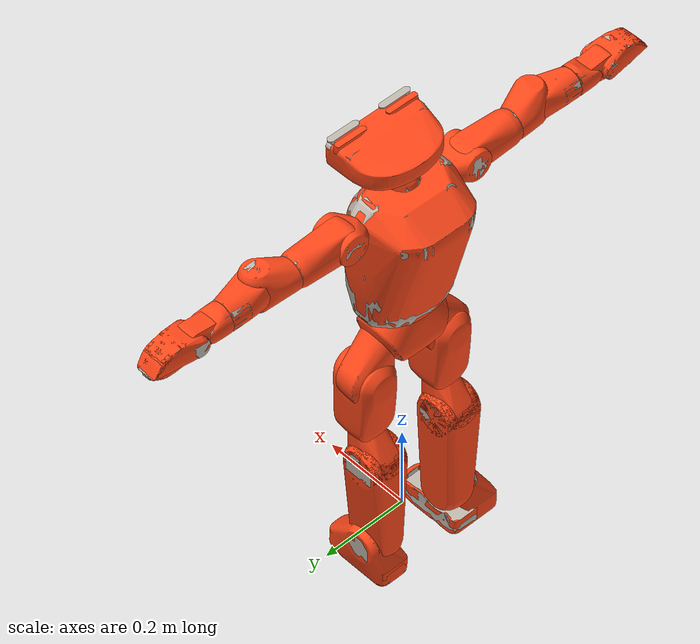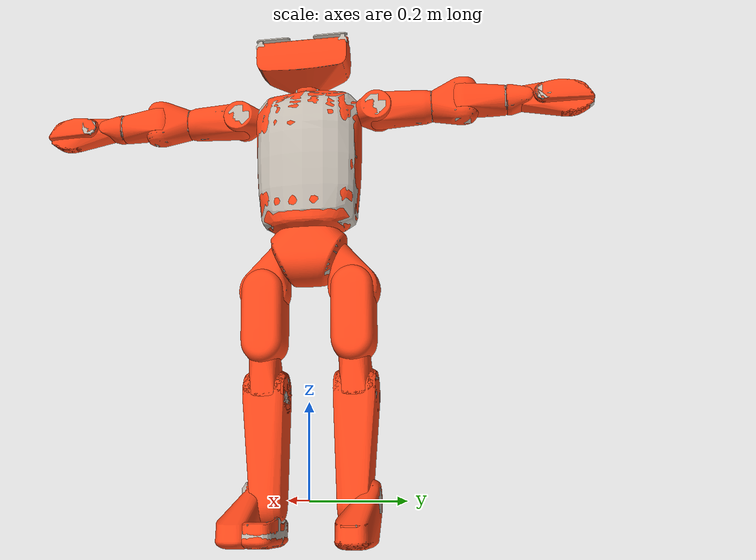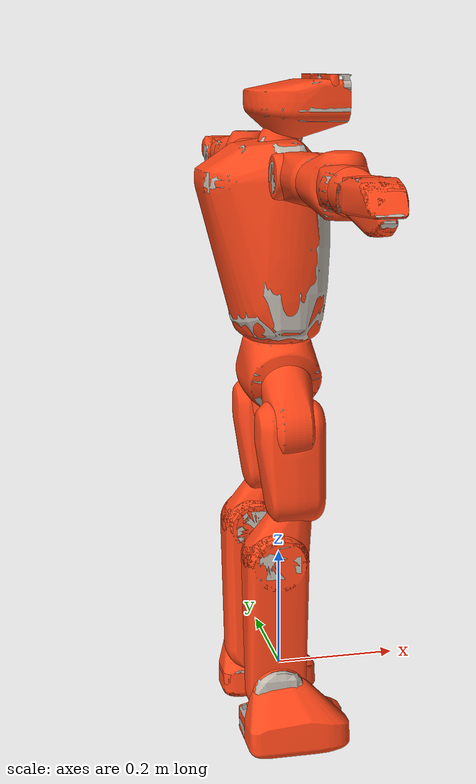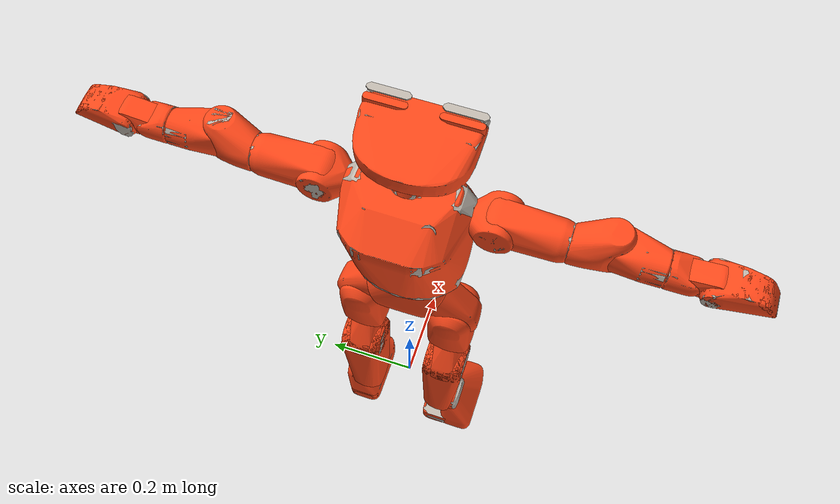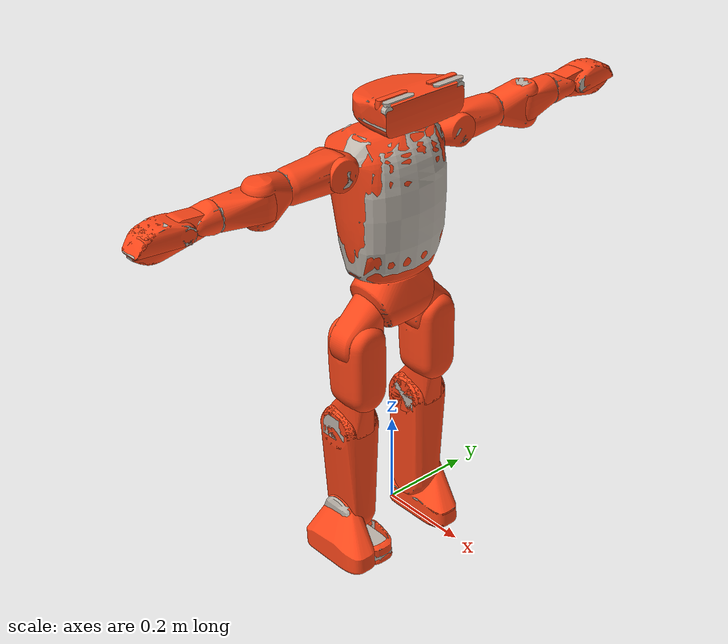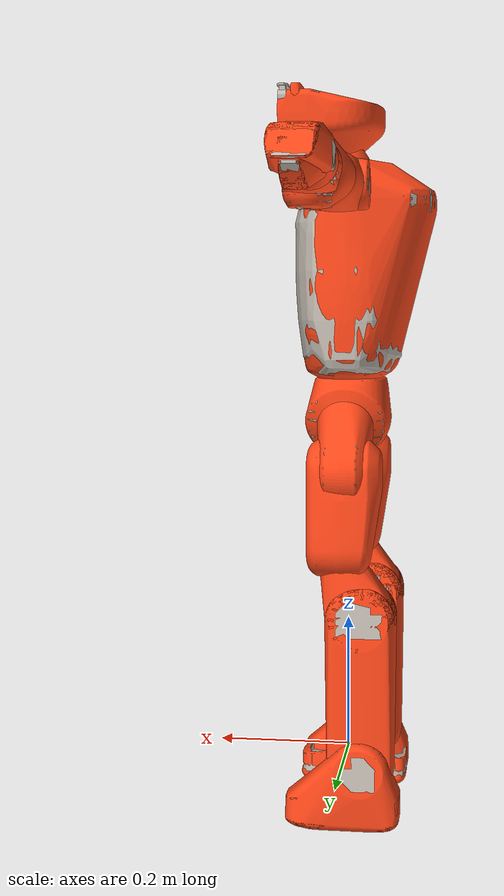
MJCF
<?xml version='1.0' encoding='utf-8'?>
<mujoco model="fdk1_sim">
  <default>
    <default class="robot">
      <default class="motor">
        <joint />
        <motor />
      </default>
      <default class="visual">
        <geom material="visualgeom" contype="0" conaffinity="0" group="2" />
      </default>
      <default class="collision">
        <geom material="collision_material" condim="3" contype="1" conaffinity="1" priority="1"
          group="1" solref="0.005 1" friction="1 0.01 0.01" />
        <equality solimp="0.99 0.999 1e-05" solref="0.005 1" />
      </default>
    </default>
  </default>

  <compiler angle="radian" />

  <asset>
    <material name="default_material" rgba="0.7 0.7 0.7 1" />
    <material name="collision_material" rgba="1.0 0.28 0.1 0.9" />
    <mesh name="torso_link_convex.stl" file="meshes/collision/torso_link_convex.stl" />
    <mesh name="torso_link.obj" file="meshes/visual/torso_link.obj" />
    <mesh name="pelvis_link_convex.stl" file="meshes/collision/pelvis_link_convex.stl" />
    <mesh name="pelvis_link.obj" file="meshes/visual/pelvis_link.obj" />
    <mesh name="left_hip_link_convex.stl" file="meshes/collision/left_hip_link_convex.stl" />
    <mesh name="left_hip_link.obj" file="meshes/visual/left_hip_link.obj" />
    <mesh name="left_femur_upper_link_convex.stl"
      file="meshes/collision/left_femur_upper_link_convex.stl" />
    <mesh name="left_femur_upper_link.obj" file="meshes/visual/left_femur_upper_link.obj" />
    <mesh name="left_femur_lower_link_convex.stl"
      file="meshes/collision/left_femur_lower_link_convex.stl" />
    <mesh name="left_knee_collision.stl" file="meshes/collision/left_knee_collision.stl" />
    <mesh name="left_femur_lower_link.obj" file="meshes/visual/left_femur_lower_link.obj" />
    <mesh name="left_tibia_link_convex.stl" file="meshes/collision/left_tibia_link_convex.stl" />
    <mesh name="left_tibia_foam_collision.stl" file="meshes/collision/left_tibia_foam_collision.stl" />
    <mesh name="left_lateral_knee_cap_collision.stl"
      file="meshes/collision/left_lateral_knee_cap_collision.stl" />
    <mesh name="left_medial_knee_cap_collision.stl"
      file="meshes/collision/left_medial_knee_cap_collision.stl" />
    <mesh name="left_tibia_link.obj" file="meshes/visual/left_tibia_link.obj" />
    <mesh name="left_foot_link_convex.stl" file="meshes/collision/left_foot_link_convex.stl" />
    <mesh name="left_shoe_collision.stl" file="meshes/collision/left_shoe_collision.stl" />
    <mesh name="left_foot_link.obj" file="meshes/visual/left_foot_link.obj" />
    <mesh name="right_hip_link_convex.stl" file="meshes/collision/right_hip_link_convex.stl" />
    <mesh name="right_hip_link.obj" file="meshes/visual/right_hip_link.obj" />
    <mesh name="right_femur_upper_link_convex.stl"
      file="meshes/collision/right_femur_upper_link_convex.stl" />
    <mesh name="right_femur_upper_link.obj" file="meshes/visual/right_femur_upper_link.obj" />
    <mesh name="right_femur_lower_link_convex.stl"
      file="meshes/collision/right_femur_lower_link_convex.stl" />
    <mesh name="right_knee_collision.stl" file="meshes/collision/right_knee_collision.stl" />
    <mesh name="right_femur_lower_link.obj" file="meshes/visual/right_femur_lower_link.obj" />
    <mesh name="right_tibia_link_convex.stl" file="meshes/collision/right_tibia_link_convex.stl" />
    <mesh name="right_tibia_foam_collision.stl"
      file="meshes/collision/right_tibia_foam_collision.stl" />
    <mesh name="right_lateral_knee_cap_collision.stl"
      file="meshes/collision/right_lateral_knee_cap_collision.stl" />
    <mesh name="right_medial_knee_cap_collision.stl"
      file="meshes/collision/right_medial_knee_cap_collision.stl" />
    <mesh name="right_tibia_link.obj" file="meshes/visual/right_tibia_link.obj" />
    <mesh name="right_foot_link_convex.stl" file="meshes/collision/right_foot_link_convex.stl" />
    <mesh name="right_shoe_collision.stl" file="meshes/collision/right_shoe_collision.stl" />
    <mesh name="right_foot_link.obj" file="meshes/visual/right_foot_link.obj" />
    <mesh name="neck_link_convex.stl" file="meshes/collision/neck_link_convex.stl" />
    <mesh name="neck_link.obj" file="meshes/visual/neck_link.obj" />
    <mesh name="head_link_convex.stl" file="meshes/collision/head_link_convex.stl" />
    <mesh name="head_link.obj" file="meshes/visual/head_link.obj" />
    <mesh name="left_eyebrow_link_convex.stl" file="meshes/collision/left_eyebrow_link_convex.stl" />
    <mesh name="left_eyebrow_link.obj" file="meshes/visual/left_eyebrow_link.obj" />
    <mesh name="right_eyebrow_link_convex.stl" file="meshes/collision/right_eyebrow_link_convex.stl" />
    <mesh name="right_eyebrow_link.obj" file="meshes/visual/right_eyebrow_link.obj" />
    <mesh name="left_shoulder_link_convex.stl" file="meshes/collision/left_shoulder_link_convex.stl" />
    <mesh name="left_shoulder_link.obj" file="meshes/visual/left_shoulder_link.obj" />
    <mesh name="left_humerus_upper_link_convex.stl"
      file="meshes/collision/left_humerus_upper_link_convex.stl" />
    <mesh name="left_humerus_upper_link.obj" file="meshes/visual/left_humerus_upper_link.obj" />
    <mesh name="left_humerus_lower_link_convex.stl"
      file="meshes/collision/left_humerus_lower_link_convex.stl" />
    <mesh name="left_humerus_lower_link.obj" file="meshes/visual/left_humerus_lower_link.obj" />
    <mesh name="left_radius_link_convex.stl" file="meshes/collision/left_radius_link_convex.stl" />
    <mesh name="left_radius_link.obj" file="meshes/visual/left_radius_link.obj" />
    <mesh name="left_wrist_link_convex.stl" file="meshes/collision/left_wrist_link_convex.stl" />
    <mesh name="left_wrist_link.obj" file="meshes/visual/left_wrist_link.obj" />
    <mesh name="left_gripper_lower_link_convex.stl"
      file="meshes/collision/left_gripper_lower_link_convex.stl" />
    <mesh name="left_lower_gripper_tpu_collision.stl"
      file="meshes/collision/left_lower_gripper_tpu_collision.stl" />
    <mesh name="left_lower_distal_gripper_pad_collision.stl"
      file="meshes/collision/left_lower_distal_gripper_pad_collision.stl" />
    <mesh name="left_lower_proximal_gripper_pad_collision.stl"
      file="meshes/collision/left_lower_proximal_gripper_pad_collision.stl" />
    <mesh name="left_gripper_lower_link.obj" file="meshes/visual/left_gripper_lower_link.obj" />
    <mesh name="left_gripper_upper_link_convex.stl"
      file="meshes/collision/left_gripper_upper_link_convex.stl" />
    <mesh name="left_upper_distal_gripper_pad_collision.stl"
      file="meshes/collision/left_upper_distal_gripper_pad_collision.stl" />
    <mesh name="left_upper_gripper_collision.stl"
      file="meshes/collision/left_upper_gripper_collision.stl" />
    <mesh name="left_upper_proximal_gripper_pad_collision.stl"
      file="meshes/collision/left_upper_proximal_gripper_pad_collision.stl" />
    <mesh name="left_gripper_upper_link.obj" file="meshes/visual/left_gripper_upper_link.obj" />
    <mesh name="right_shoulder_link_convex.stl"
      file="meshes/collision/right_shoulder_link_convex.stl" />
    <mesh name="right_shoulder_link.obj" file="meshes/visual/right_shoulder_link.obj" />
    <mesh name="right_humerus_upper_link_convex.stl"
      file="meshes/collision/right_humerus_upper_link_convex.stl" />
    <mesh name="right_humerus_upper_link.obj" file="meshes/visual/right_humerus_upper_link.obj" />
    <mesh name="right_humerus_lower_link_convex.stl"
      file="meshes/collision/right_humerus_lower_link_convex.stl" />
    <mesh name="right_humerus_lower_link.obj" file="meshes/visual/right_humerus_lower_link.obj" />
    <mesh name="right_radius_link_convex.stl" file="meshes/collision/right_radius_link_convex.stl" />
    <mesh name="right_radius_link.obj" file="meshes/visual/right_radius_link.obj" />
    <mesh name="right_wrist_link_convex.stl" file="meshes/collision/right_wrist_link_convex.stl" />
    <mesh name="right_wrist_link.obj" file="meshes/visual/right_wrist_link.obj" />
    <mesh name="right_gripper_lower_link_convex.stl"
      file="meshes/collision/right_gripper_lower_link_convex.stl" />
    <mesh name="right_lower_distal_gripper_pad_collision.stl"
      file="meshes/collision/right_lower_distal_gripper_pad_collision.stl" />
    <mesh name="right_lower_gripper_tpu_collision.stl"
      file="meshes/collision/right_lower_gripper_tpu_collision.stl" />
    <mesh name="right_lower_proximal_gripper_pad_collision.stl"
      file="meshes/collision/right_lower_proximal_gripper_pad_collision.stl" />
    <mesh name="right_gripper_lower_link.obj" file="meshes/visual/right_gripper_lower_link.obj" />
    <mesh name="right_gripper_upper_link_convex.stl"
      file="meshes/collision/right_gripper_upper_link_convex.stl" />
    <mesh name="right_upper_gripper_collision.stl"
      file="meshes/collision/right_upper_gripper_collision.stl" />
    <mesh name="right_upper_proximal_gripper_pad_collision.stl"
      file="meshes/collision/right_upper_proximal_gripper_pad_collision.stl" />
    <mesh name="right_upper_distal_gripper_pad_collision.stl"
      file="meshes/collision/right_upper_distal_gripper_pad_collision.stl" />
    <mesh name="right_gripper_upper_link.obj" file="meshes/visual/right_gripper_upper_link.obj" />
    <texture name="robot_diffuse" type="2d" file="textures/robot_D.png" />
    <texture name="robot_normal" type="2d" file="textures/robot_N.png" />
    <material name="visualgeom" texture="robot_diffuse" texrepeat="1 1" texuniform="false" />
  </asset>

  <worldbody>
    <body name="torso_link" pos="0.00000000 0.00000000 0.54699978" quat="1 0 0 0" childclass="robot">
      <light name="tracking_light" mode="trackcom" pos="0 0 3" />
      <camera name="close_profile" mode="trackcom" pos="1.2 -1.2 1.2" xyaxes="1 1 0 -1 1 2" />
      <camera name="back" mode="trackcom" pos="-5 0 3" xyaxes="0 -1 0 1 0 2" />
      <camera name="side" mode="trackcom" pos="0 -5 3" xyaxes="1 0 0 0 1 2" />
      <geom name="torso_link_collision" pos="0 0 0" quat="1.0 0.0 0.0 0.0" type="mesh"
        mesh="torso_link_convex.stl" class="collision" />
      <geom name="torso_link_visual" pos="0 0 0" quat="1.0 0.0 0.0 0.0" type="mesh"
        mesh="torso_link.obj" class="visual" />
      <inertial pos="-0.009505 0.001443 0.178938" quat="1.0 0.0 0.0 0.0" mass="7.889548"
        diaginertia="0.08184 0.068997 0.032723" />
      <body name="pelvis_link" pos="0 0 0" quat="1.0 0.0 0.0 0.0">
        <joint name="waist_yaw_joint" type="hinge" ref="0.0" class="motor"
          range="-1.047198 1.047198" axis="0 0 1" />
        <inertial pos="-0.000358 -0 -0.033171" quat="1.0 0.0 0.0 0.0" mass="1.841405"
          diaginertia="0.004094 0.002121 0.004084" />
        <geom name="pelvis_link_collision" pos="0 0 0" quat="1.0 0.0 0.0 0.0" type="mesh"
          mesh="pelvis_link_convex.stl" class="collision" />
        <geom name="pelvis_link_visual" pos="0 0 0" quat="1.0 0.0 0.0 0.0" type="mesh"
          mesh="pelvis_link.obj" class="visual" />
        <body name="left_hip_link" pos="0 0.069 -0.05"
          quat="0.9762960409925676 -0.21643946114846713 0.0 0.0">
          <joint name="left_hip_pitch_joint" type="hinge" ref="0.0" class="motor"
            range="-3.141593 1.570796" axis="0 1 0" />
          <inertial pos="-0.001522 0.043781 -0.034576" quat="1.0 0.0 0.0 0.0" mass="0.961113"
            diaginertia="0.001332 0.000964 0.00094" />
          <geom name="left_hip_link_collision" pos="0 0 0" quat="1.0 0.0 0.0 0.0" type="mesh"
            mesh="left_hip_link_convex.stl" class="collision" />
          <geom name="left_hip_link_visual" pos="0 0 0" quat="1.0 0.0 0.0 0.0" type="mesh"
            mesh="left_hip_link.obj" class="visual" />
          <body name="left_femur_upper_link" pos="0.033 0.048982 -0.041155"
            quat="0.9762960409925676 0.21643946114846713 0.0 0.0">
            <joint name="left_hip_roll_joint" type="hinge" ref="0.0" class="motor"
              range="-0.785398 2.094395" axis="1 0 0" />
            <inertial pos="-0.029729 0 -0.078632" quat="1.0 0.0 0.0 0.0" mass="0.831201"
              diaginertia="0.00171 0.001873 0.000802" />
            <geom name="left_femur_upper_link_collision" pos="0 0 0" quat="1.0 0.0 0.0 0.0"
              type="mesh" mesh="left_femur_upper_link_convex.stl" class="collision" />
            <geom name="left_femur_upper_link_visual" pos="0 0 0" quat="1.0 0.0 0.0 0.0" type="mesh"
              mesh="left_femur_upper_link.obj" class="visual" />
            <body name="left_femur_lower_link" pos="-0.031 0 -0.1285" quat="1.0 0.0 0.0 0.0">
              <joint name="left_hip_yaw_joint" type="hinge" ref="0.0" class="motor"
                range="-1.570796 2.617994" axis="0 0 1" />
              <inertial pos="-0.023628 -0.000196 -0.07701" quat="1.0 0.0 0.0 0.0" mass="0.951524"
                diaginertia="0.001198 0.00152 0.000822" />
              <geom name="left_femur_lower_link_collision_0" pos="0 0 0" quat="1.0 0.0 0.0 0.0"
                type="mesh" mesh="left_femur_lower_link_convex.stl" class="collision" />
              <geom name="left_femur_lower_link_collision_1" pos="0 0 0" quat="1.0 0.0 0.0 0.0"
                type="mesh" mesh="left_knee_collision.stl" class="collision" />
              <geom name="left_femur_lower_link_visual" pos="0 0 0" quat="1.0 0.0 0.0 0.0"
                type="mesh" mesh="left_femur_lower_link.obj" class="visual" />
              <body name="left_tibia_link" pos="-0.029 -0.0341 -0.0875" quat="1.0 0.0 0.0 0.0">
                <joint name="left_knee_joint" type="hinge" ref="0.0" class="motor"
                  range="-0.174533 2.792527" axis="0 1 0" />
                <inertial pos="0.002081 0.029721 -0.162914" quat="1.0 0.0 0.0 0.0" mass="1.119037"
                  diaginertia="0.008581 0.008653 0.000893" />
                <geom name="left_tibia_link_collision_0" pos="0 0 0" quat="1.0 0.0 0.0 0.0"
                  type="mesh" mesh="left_tibia_link_convex.stl" class="collision" />
                <geom name="left_tibia_link_collision_1" pos="0 0 0" quat="1.0 0.0 0.0 0.0"
                  type="mesh" mesh="left_tibia_foam_collision.stl" class="collision" />
                <geom name="left_tibia_link_collision_2" pos="0 0 0" quat="1.0 0.0 0.0 0.0"
                  type="mesh" mesh="left_lateral_knee_cap_collision.stl" class="collision" />
                <geom name="left_tibia_link_collision_3" pos="0 0 0" quat="1.0 0.0 0.0 0.0"
                  type="mesh" mesh="left_medial_knee_cap_collision.stl" class="collision" />
                <geom name="left_tibia_link_visual" pos="0 0 0" quat="1.0 0.0 0.0 0.0" type="mesh"
                  mesh="left_tibia_link.obj" class="visual" />
                <body name="left_foot_link" pos="0 0.0585 -0.223" quat="1.0 0.0 0.0 0.0">
                  <joint name="left_ankle_joint" type="hinge" ref="0.0" class="motor"
                    range="-1.570796 1.570796" axis="0 1 0" />
                  <inertial pos="0.015796 -0.014214 -0.050628" quat="1.0 0.0 0.0 0.0"
                    mass="0.577107" diaginertia="0.000848 0.00149 0.001178" />
                  <geom name="left_foot_link_collision_0" pos="0 0 0" quat="1.0 0.0 0.0 0.0"
                    type="mesh" mesh="left_foot_link_convex.stl" class="collision" />
                  <geom name="left_foot_link_collision_1" pos="0 0 0" quat="1.0 0.0 0.0 0.0"
                    type="mesh" mesh="left_shoe_collision.stl" class="collision" />
                  <geom name="left_foot_link_visual" pos="0 0 0" quat="1.0 0.0 0.0 0.0" type="mesh"
                    mesh="left_foot_link.obj" class="visual" />
                  <body name="ref_left_sole_link" pos="0.038754 -0.0244 -0.093"
                    quat="1.0 0.0 0.0 0.0" />
                  <body name="ref_left_toe_link" pos="0.111754 -0.0244 -0.093"
                    quat="1.0 0.0 0.0 0.0" />
                  <body name="ref_left_heel_link" pos="-0.058246 -0.0244 -0.093"
                    quat="1.0 0.0 0.0 0.0" />
                </body>
              </body>
            </body>
          </body>
        </body>
        <body name="right_hip_link" pos="0 -0.069 -0.05"
          quat="0.9762960409925676 0.21643946114846713 0.0 0.0">
          <joint name="right_hip_pitch_joint" type="hinge" ref="0.0" class="motor"
            range="-3.141593 1.570796" axis="0 1 0" />
          <inertial pos="-0.000777 -0.043633 -0.034448" quat="1.0 0.0 0.0 0.0" mass="0.94008"
            diaginertia="0.001321 0.000938 0.000915" />
          <geom name="right_hip_link_collision" pos="0 0 0" quat="1.0 0.0 0.0 0.0" type="mesh"
            mesh="right_hip_link_convex.stl" class="collision" />
          <geom name="right_hip_link_visual" pos="0 0 0" quat="1.0 0.0 0.0 0.0" type="mesh"
            mesh="right_hip_link.obj" class="visual" />
          <body name="right_femur_upper_link" pos="0.033 -0.048982 -0.041155"
            quat="0.9762960409925676 -0.21643946114846713 0.0 0.0">
            <joint name="right_hip_roll_joint" type="hinge" ref="0.0" class="motor"
              range="-2.094395 0.785398" axis="1 0 0" />
            <inertial pos="-0.030647 0 -0.076586" quat="1.0 0.0 0.0 0.0" mass="0.853401"
              diaginertia="0.001855 0.00204 0.000835" />
            <geom name="right_femur_upper_link_collision" pos="0 0 0" quat="1.0 0.0 0.0 0.0"
              type="mesh" mesh="right_femur_upper_link_convex.stl" class="collision" />
            <geom name="right_femur_upper_link_visual" pos="0 0 0" quat="1.0 0.0 0.0 0.0"
              type="mesh" mesh="right_femur_upper_link.obj" class="visual" />
            <body name="right_femur_lower_link" pos="-0.031 0 -0.1285" quat="1.0 0.0 0.0 0.0">
              <joint name="right_hip_yaw_joint" type="hinge" ref="0.0" class="motor"
                range="-2.617994 1.570796" axis="0 0 1" />
              <inertial pos="-0.023558 0.000196 -0.076927" quat="1.0 0.0 0.0 0.0" mass="0.95152"
                diaginertia="0.001197 0.001518 0.000821" />
              <geom name="right_femur_lower_link_collision_0" pos="0 0 0" quat="1.0 0.0 0.0 0.0"
                type="mesh" mesh="right_femur_lower_link_convex.stl" class="collision" />
              <geom name="right_femur_lower_link_collision_1" pos="0 0 0" quat="1.0 0.0 0.0 0.0"
                type="mesh" mesh="right_knee_collision.stl" class="collision" />
              <geom name="right_femur_lower_link_visual" pos="0 0 0" quat="1.0 0.0 0.0 0.0"
                type="mesh" mesh="right_femur_lower_link.obj" class="visual" />
              <body name="right_tibia_link" pos="-0.029 0.0341 -0.0875" quat="1.0 0.0 0.0 0.0">
                <joint name="right_knee_joint" type="hinge" ref="0.0" class="motor"
                  range="-0.174533 2.792527" axis="0 1 0" />
                <inertial pos="0.002081 -0.029721 -0.162889" quat="1.0 0.0 0.0 0.0" mass="1.119036"
                  diaginertia="0.008577 0.008649 0.000893" />
                <geom name="right_tibia_link_collision_0" pos="0 0 0" quat="1.0 0.0 0.0 0.0"
                  type="mesh" mesh="right_tibia_link_convex.stl" class="collision" />
                <geom name="right_tibia_link_collision_1" pos="0 0 0" quat="1.0 0.0 0.0 0.0"
                  type="mesh" mesh="right_tibia_foam_collision.stl" class="collision" />
                <geom name="right_tibia_link_collision_2" pos="0 0 0" quat="1.0 0.0 0.0 0.0"
                  type="mesh" mesh="right_lateral_knee_cap_collision.stl" class="collision" />
                <geom name="right_tibia_link_collision_3" pos="0 0 0" quat="1.0 0.0 0.0 0.0"
                  type="mesh" mesh="right_medial_knee_cap_collision.stl" class="collision" />
                <geom name="right_tibia_link_visual" pos="0 0 0" quat="1.0 0.0 0.0 0.0" type="mesh"
                  mesh="right_tibia_link.obj" class="visual" />
                <body name="right_foot_link" pos="0 -0.0585 -0.223" quat="1.0 0.0 0.0 0.0">
                  <joint name="right_ankle_joint" type="hinge" ref="0.0" class="motor"
                    range="-1.570796 1.570796" axis="0 1 0" />
                  <inertial pos="0.015795 0.014214 -0.050628" quat="1.0 0.0 0.0 0.0" mass="0.577095"
                    diaginertia="0.000848 0.00149 0.001178" />
                  <geom name="right_foot_link_collision_0" pos="0 0 0" quat="1.0 0.0 0.0 0.0"
                    type="mesh" mesh="right_foot_link_convex.stl" class="collision" />
                  <geom name="right_foot_link_collision_1" pos="0 0 0" quat="1.0 0.0 0.0 0.0"
                    type="mesh" mesh="right_shoe_collision.stl" class="collision" />
                  <geom name="right_foot_link_visual" pos="0 0 0" quat="1.0 0.0 0.0 0.0" type="mesh"
                    mesh="right_foot_link.obj" class="visual" />
                  <body name="ref_right_sole_link" pos="0.038754 0.0244 -0.093"
                    quat="1.0 0.0 0.0 0.0" />
                  <body name="ref_right_toe_link" pos="0.111754 0.0244 -0.093"
                    quat="1.0 0.0 0.0 0.0" />
                  <body name="ref_right_heel_link" pos="-0.058246 0.0244 -0.093"
                    quat="1.0 0.0 0.0 0.0" />
                </body>
              </body>
            </body>
          </body>
        </body>
      </body>
      <body name="ref_imu_link" pos="0.010281 0.051975 0.05085"
        quat="-1.7320510330969933e-07 -0.0 0.0 0.999999999999985">
        <site name="torso_link_site" pos="0 0 0" quat="1 0 0 0" />
        <inertial pos="0 0 0" quat="1.0 0.0 0.0 0.0" mass="0.001" diaginertia="1e-06 1e-06 1e-06" />
      </body>
      <body name="ref_back_right_tof_link" pos="-0.054304 -0.061546 0.054423"
        quat="0.5495162456812807 0.261958461097565 0.3413910140049352 0.7161437257621044" />
      <body name="ref_back_left_tof_link" pos="-0.054304 0.061546 0.054423"
        quat="0.7161436305830756 0.34139096863238777 0.2619585202282269 0.5495163697210205" />
      <body name="ref_front_left_tof_link" pos="0.050079 0.061505 0.054611"
        quat="0.5495162456812807 -0.261958461097565 -0.3413910140049352 0.7161437257621044" />
      <body name="ref_front_right_tof_link" pos="0.050079 -0.061465 0.054611"
        quat="0.7161436305830756 -0.34139096863238777 -0.2619585202282269 0.5495163697210205" />
      <body name="neck_link" pos="0.0036 0 0.318" quat="1.0 0.0 0.0 0.0">
        <joint name="neck_yaw_joint" type="hinge" ref="0.0" class="motor" range="-1.570796 1.570796"
          axis="0 0 1" />
        <inertial pos="0.002978 -0.001676 0.027293" quat="1.0 0.0 0.0 0.0" mass="0.110482"
          diaginertia="9.2e-05 6.3e-05 8.1e-05" />
        <geom name="neck_link_collision" pos="0 0 0" quat="1.0 0.0 0.0 0.0" type="mesh"
          mesh="neck_link_convex.stl" class="collision" />
        <geom name="neck_link_visual" pos="0 0 0" quat="1.0 0.0 0.0 0.0" type="mesh"
          mesh="neck_link.obj" class="visual" />
        <body name="head_link" pos="0.0094 0.02155 0.044" quat="1.0 0.0 0.0 0.0">
          <joint name="neck_pitch_joint" type="hinge" ref="0.0" class="motor"
            range="-0.785398 0.785398" axis="0 1 0" />
          <inertial pos="0.022474 -0.020478 0.027976" quat="1.0 0.0 0.0 0.0" mass="1.057195"
            diaginertia="0.003127 0.001841 0.003947" />
          <geom name="head_link_collision" pos="0 0 0" quat="1.0 0.0 0.0 0.0" type="mesh"
            mesh="head_link_convex.stl" class="collision" />
          <geom name="head_link_visual" pos="0 0 0" quat="1.0 0.0 0.0 0.0" type="mesh"
            mesh="head_link.obj" class="visual" />
          <body name="ref_zed_camera_link" pos="0.057246 -0.02155 0.024283"
            quat="0.9990482316709891 0.0 0.0436191562856228 0.0" />
          <body name="left_eyebrow_link" pos="0.05848 0.068926 0.058063" quat="1.0 0.0 0.0 0.0">
            <inertial pos="-0.002383 -0.015101 0.009979" quat="1.0 0.0 0.0 0.0" mass="0.014266"
              diaginertia="1.2e-05 7e-06 1.1e-05" />
            <geom name="left_eyebrow_link_collision" pos="0 0 0" quat="1.0 0.0 0.0 0.0" type="mesh"
              mesh="left_eyebrow_link_convex.stl" class="collision" />
            <geom name="left_eyebrow_link_visual" pos="0 0 0" quat="1.0 0.0 0.0 0.0" type="mesh"
              mesh="left_eyebrow_link.obj" class="visual" />
          </body>
          <body name="right_eyebrow_link" pos="0.05848 -0.112026 0.058063" quat="1.0 0.0 0.0 0.0">
            <inertial pos="-0.002383 0.015101 0.009979" quat="1.0 0.0 0.0 0.0" mass="0.014266"
              diaginertia="1.2e-05 7e-06 1.1e-05" />
            <geom name="right_eyebrow_link_collision" pos="0 0 0" quat="1.0 0.0 0.0 0.0" type="mesh"
              mesh="right_eyebrow_link_convex.stl" class="collision" />
            <geom name="right_eyebrow_link_visual" pos="0 0 0" quat="1.0 0.0 0.0 0.0" type="mesh"
              mesh="right_eyebrow_link.obj" class="visual" />
          </body>
        </body>
      </body>
      <body name="left_shoulder_link" pos="0 0.099 0.285"
        quat="0.998629528346543 0.05233607851531355 0.0 0.0">
        <joint name="left_shoulder_pitch_joint" type="hinge" ref="0.0" class="motor"
          range="-2.617994 2.617994" axis="0 1 0" />
        <inertial pos="-0.000648 0.039945 -0" quat="1.0 0.0 0.0 0.0" mass="0.159938"
          diaginertia="0.000123 0.000156 0.000208" />
        <geom name="left_shoulder_link_collision" pos="0 0 0" quat="1.0 0.0 0.0 0.0" type="mesh"
          mesh="left_shoulder_link_convex.stl" class="collision" />
        <geom name="left_shoulder_link_visual" pos="0 0 0" quat="1.0 0.0 0.0 0.0" type="mesh"
          mesh="left_shoulder_link.obj" class="visual" />
        <body name="left_humerus_upper_link" pos="0.0272 0.055 0"
          quat="0.998629528346543 -0.05233607851531355 0.0 0.0">
          <joint name="left_shoulder_roll_joint" type="hinge" ref="0.0" class="motor"
            range="-1.902409 1.675516" axis="1 0 0" />
          <inertial pos="-0.026044 0.048055 0.000164" quat="1.0 0.0 0.0 0.0" mass="0.971533"
            diaginertia="0.002444 0.000484 0.002443" />
          <geom name="left_humerus_upper_link_collision" pos="0 0 0" quat="1.0 0.0 0.0 0.0"
            type="mesh" mesh="left_humerus_upper_link_convex.stl" class="collision" />
          <geom name="left_humerus_upper_link_visual" pos="0 0 0" quat="1.0 0.0 0.0 0.0" type="mesh"
            mesh="left_humerus_upper_link.obj" class="visual" />
          <body name="left_humerus_lower_link" pos="-0.0272 0.12 0" quat="1.0 0.0 0.0 0.0">
            <joint name="left_shoulder_yaw_joint" type="hinge" ref="0.0" class="motor"
              range="-2.268928 2.268928" axis="0 1 0" />
            <inertial pos="0.005372 0.036856 -0.003801" quat="1.0 0.0 0.0 0.0" mass="0.173788"
              diaginertia="0.000222 0.000162 0.000158" />
            <geom name="left_humerus_lower_link_collision" pos="0 0 0" quat="1.0 0.0 0.0 0.0"
              type="mesh" mesh="left_humerus_lower_link_convex.stl" class="collision" />
            <geom name="left_humerus_lower_link_visual" pos="0 0 0" quat="1.0 0.0 0.0 0.0"
              type="mesh" mesh="left_humerus_lower_link.obj" class="visual" />
            <body name="left_radius_link" pos="0.018 0.065 -0.0272" quat="1.0 0.0 0.0 0.0">
              <joint name="left_elbow_joint" type="hinge" ref="0.0" class="motor"
                range="-2.548181 0.453786" axis="0 0 1" />
              <inertial pos="-0.006831 0.030714 0.026318" quat="1.0 0.0 0.0 0.0" mass="0.809864"
                diaginertia="0.001337 0.000427 0.001363" />
              <geom name="left_radius_link_collision" pos="0 0 0" quat="1.0 0.0 0.0 0.0" type="mesh"
                mesh="left_radius_link_convex.stl" class="collision" />
              <geom name="left_radius_link_visual" pos="0 0 0" quat="1.0 0.0 0.0 0.0" type="mesh"
                mesh="left_radius_link.obj" class="visual" />
              <body name="left_wrist_link" pos="-0.014 0.0966 0.0272" quat="1.0 0.0 0.0 0.0">
                <joint name="left_wrist_roll_joint" type="hinge" ref="0.0" class="motor"
                  range="-2.181662 2.181662" axis="0 1 0" />
                <inertial pos="-0.000187 0.015296 0.001376" quat="1.0 0.0 0.0 0.0" mass="0.0814"
                  diaginertia="4.2e-05 5.5e-05 6.1e-05" />
                <geom name="left_wrist_link_collision" pos="0 0 0" quat="1.0 0.0 0.0 0.0"
                  type="mesh" mesh="left_wrist_link_convex.stl" class="collision" />
                <geom name="left_wrist_link_visual" pos="0 0 0" quat="1.0 0.0 0.0 0.0" type="mesh"
                  mesh="left_wrist_link.obj" class="visual" />
                <body name="left_gripper_lower_link" pos="-0.02155 0.035 0" quat="1.0 0.0 0.0 0.0">
                  <joint name="left_wrist_pitch_joint" type="hinge" ref="0.0" class="motor"
                    range="-1.570796 1.570796" axis="1 0 0" />
                  <inertial pos="0.019697 0.028667 -0.004055" quat="1.0 0.0 0.0 0.0" mass="0.451826"
                    diaginertia="0.000631 0.000226 0.000594" />
                  <geom name="left_gripper_lower_link_collision_0" pos="0 0 0"
                    quat="1.0 0.0 0.0 0.0" type="mesh" mesh="left_gripper_lower_link_convex.stl"
                    class="collision" />
                  <geom name="left_gripper_lower_link_collision_1" pos="0 0 0"
                    quat="1.0 0.0 0.0 0.0" type="mesh" mesh="left_lower_gripper_tpu_collision.stl"
                    class="collision" />
                  <geom name="left_gripper_lower_link_collision_2" pos="0 0 0"
                    quat="1.0 0.0 0.0 0.0" type="mesh"
                    mesh="left_lower_distal_gripper_pad_collision.stl" class="collision" />
                  <geom name="left_gripper_lower_link_collision_3" pos="0 0 0"
                    quat="1.0 0.0 0.0 0.0" type="mesh"
                    mesh="left_lower_proximal_gripper_pad_collision.stl" class="collision" />
                  <geom name="left_gripper_lower_link_visual" pos="0 0 0" quat="1.0 0.0 0.0 0.0"
                    type="mesh" mesh="left_gripper_lower_link.obj" class="visual" />
                  <body name="left_gripper_upper_link" pos="0 0.038 0" quat="1.0 0.0 0.0 0.0">
                    <joint name="left_gripper_joint" type="hinge" ref="0.0" class="motor"
                      range="-0.191986 1.361357" axis="1 0 0" />
                    <inertial pos="0.021913 0.037776 0.007598" quat="1.0 0.0 0.0 0.0"
                      mass="0.194847" diaginertia="0.000221 0.000116 0.000275" />
                    <geom name="left_gripper_upper_link_collision_0" pos="0 0 0"
                      quat="1.0 0.0 0.0 0.0" type="mesh" mesh="left_gripper_upper_link_convex.stl"
                      class="collision" />
                    <geom name="left_gripper_upper_link_collision_1" pos="0 0 0"
                      quat="1.0 0.0 0.0 0.0" type="mesh"
                      mesh="left_upper_distal_gripper_pad_collision.stl" class="collision" />
                    <geom name="left_gripper_upper_link_collision_2" pos="0 0 0"
                      quat="1.0 0.0 0.0 0.0" type="mesh" mesh="left_upper_gripper_collision.stl"
                      class="collision" />
                    <geom name="left_gripper_upper_link_collision_3" pos="0 0 0"
                      quat="1.0 0.0 0.0 0.0" type="mesh"
                      mesh="left_upper_proximal_gripper_pad_collision.stl" class="collision" />
                    <geom name="left_gripper_upper_link_visual" pos="0 0 0" quat="1.0 0.0 0.0 0.0"
                      type="mesh" mesh="left_gripper_upper_link.obj" class="visual" />
                    <body name="ref_left_grippertip_link" pos="0.02155 0.103657 -0.015195"
                      quat="0.7071068967259818 0.0 0.0 -0.7071066656470943" />
                  </body>
                </body>
              </body>
            </body>
          </body>
        </body>
      </body>
      <body name="right_shoulder_link" pos="0 -0.099 0.285"
        quat="0.998629528346543 -0.05233607851531355 0.0 0.0">
        <joint name="right_shoulder_pitch_joint" type="hinge" ref="0.0" class="motor"
          range="-2.617994 2.617994" axis="0 1 0" />
        <inertial pos="0.001543 -0.038725 -0" quat="1.0 0.0 0.0 0.0" mass="0.147944"
          diaginertia="0.000116 0.000143 0.000191" />
        <geom name="right_shoulder_link_collision" pos="0 0 0" quat="1.0 0.0 0.0 0.0" type="mesh"
          mesh="right_shoulder_link_convex.stl" class="collision" />
        <geom name="right_shoulder_link_visual" pos="0 0 0" quat="1.0 0.0 0.0 0.0" type="mesh"
          mesh="right_shoulder_link.obj" class="visual" />
        <body name="right_humerus_upper_link" pos="0.0272 -0.055 0"
          quat="0.998629528346543 0.05233607851531355 0.0 0.0">
          <joint name="right_shoulder_roll_joint" type="hinge" ref="0.0" class="motor"
            range="-1.675516 1.902409" axis="1 0 0" />
          <inertial pos="-0.026397 -0.047469 -0.000108" quat="1.0 0.0 0.0 0.0" mass="0.983527"
            diaginertia="0.002476 0.000499 0.002484" />
          <geom name="right_humerus_upper_link_collision" pos="0 0 0" quat="1.0 0.0 0.0 0.0"
            type="mesh" mesh="right_humerus_upper_link_convex.stl" class="collision" />
          <geom name="right_humerus_upper_link_visual" pos="0 0 0" quat="1.0 0.0 0.0 0.0"
            type="mesh" mesh="right_humerus_upper_link.obj" class="visual" />
          <body name="right_humerus_lower_link" pos="-0.0272 -0.12 0" quat="1.0 0.0 0.0 0.0">
            <joint name="right_shoulder_yaw_joint" type="hinge" ref="0.0" class="motor"
              range="-2.268928 2.268928" axis="0 1 0" />
            <inertial pos="0.005372 -0.036856 0.003801" quat="1.0 0.0 0.0 0.0" mass="0.173788"
              diaginertia="0.000222 0.000162 0.000158" />
            <geom name="right_humerus_lower_link_collision" pos="0 0 0" quat="1.0 0.0 0.0 0.0"
              type="mesh" mesh="right_humerus_lower_link_convex.stl" class="collision" />
            <geom name="right_humerus_lower_link_visual" pos="0 0 0" quat="1.0 0.0 0.0 0.0"
              type="mesh" mesh="right_humerus_lower_link.obj" class="visual" />
            <body name="right_radius_link" pos="0.018 -0.065 0.0272" quat="1.0 0.0 0.0 0.0">
              <joint name="right_elbow_joint" type="hinge" ref="0.0" class="motor"
                range="-0.453786 2.548181" axis="0 0 1" />
              <inertial pos="-0.006719 -0.030714 -0.026383" quat="1.0 0.0 0.0 0.0" mass="0.809864"
                diaginertia="0.001337 0.000425 0.001362" />
              <geom name="right_radius_link_collision" pos="0 0 0" quat="1.0 0.0 0.0 0.0"
                type="mesh" mesh="right_radius_link_convex.stl" class="collision" />
              <geom name="right_radius_link_visual" pos="0 0 0" quat="1.0 0.0 0.0 0.0" type="mesh"
                mesh="right_radius_link.obj" class="visual" />
              <body name="right_wrist_link" pos="-0.014 -0.0966 -0.0272" quat="1.0 0.0 0.0 0.0">
                <joint name="right_wrist_roll_joint" type="hinge" ref="0.0" class="motor"
                  range="-2.181662 2.181662" axis="0 1 0" />
                <inertial pos="0.001615 -0.013991 0.001467" quat="1.0 0.0 0.0 0.0" mass="0.076342"
                  diaginertia="3.8e-05 5.1e-05 5.5e-05" />
                <geom name="right_wrist_link_collision" pos="0 0 0" quat="1.0 0.0 0.0 0.0"
                  type="mesh" mesh="right_wrist_link_convex.stl" class="collision" />
                <geom name="right_wrist_link_visual" pos="0 0 0" quat="1.0 0.0 0.0 0.0" type="mesh"
                  mesh="right_wrist_link.obj" class="visual" />
                <body name="right_gripper_lower_link" pos="0.02155 -0.035 0" quat="1.0 0.0 0.0 0.0">
                  <joint name="right_wrist_pitch_joint" type="hinge" ref="0.0" class="motor"
                    range="-1.570796 1.570796" axis="1 0 0" />
                  <inertial pos="-0.019996 -0.028307 -0.004004" quat="1.0 0.0 0.0 0.0"
                    mass="0.457577" diaginertia="0.000639 0.000232 0.000605" />
                  <geom name="right_gripper_lower_link_collision_0" pos="0 0 0"
                    quat="1.0 0.0 0.0 0.0" type="mesh" mesh="right_gripper_lower_link_convex.stl"
                    class="collision" />
                  <geom name="right_gripper_lower_link_collision_1" pos="0 0 0"
                    quat="1.0 0.0 0.0 0.0" type="mesh"
                    mesh="right_lower_distal_gripper_pad_collision.stl" class="collision" />
                  <geom name="right_gripper_lower_link_collision_2" pos="0 0 0"
                    quat="1.0 0.0 0.0 0.0" type="mesh" mesh="right_lower_gripper_tpu_collision.stl"
                    class="collision" />
                  <geom name="right_gripper_lower_link_collision_3" pos="0 0 0"
                    quat="1.0 0.0 0.0 0.0" type="mesh"
                    mesh="right_lower_proximal_gripper_pad_collision.stl" class="collision" />
                  <geom name="right_gripper_lower_link_visual" pos="0 0 0" quat="1.0 0.0 0.0 0.0"
                    type="mesh" mesh="right_gripper_lower_link.obj" class="visual" />
                  <body name="right_gripper_upper_link" pos="0 -0.038 0" quat="1.0 0.0 0.0 0.0">
                    <joint name="right_gripper_joint" type="hinge" ref="0.0" class="motor"
                      range="-1.361357 0.191986" axis="1 0 0" />
                    <inertial pos="-0.021915 -0.037777 0.007598" quat="1.0 0.0 0.0 0.0"
                      mass="0.194847" diaginertia="0.000221 0.000116 0.000275" />
                    <geom name="right_gripper_upper_link_collision_0" pos="0 0 0"
                      quat="1.0 0.0 0.0 0.0" type="mesh" mesh="right_gripper_upper_link_convex.stl"
                      class="collision" />
                    <geom name="right_gripper_upper_link_collision_1" pos="0 0 0"
                      quat="1.0 0.0 0.0 0.0" type="mesh" mesh="right_upper_gripper_collision.stl"
                      class="collision" />
                    <geom name="right_gripper_upper_link_collision_2" pos="0 0 0"
                      quat="1.0 0.0 0.0 0.0" type="mesh"
                      mesh="right_upper_proximal_gripper_pad_collision.stl" class="collision" />
                    <geom name="right_gripper_upper_link_collision_3" pos="0 0 0"
                      quat="1.0 0.0 0.0 0.0" type="mesh"
                      mesh="right_upper_distal_gripper_pad_collision.stl" class="collision" />
                    <geom name="right_gripper_upper_link_visual" pos="0 0 0" quat="1.0 0.0 0.0 0.0"
                      type="mesh" mesh="right_gripper_upper_link.obj" class="visual" />
                    <body name="ref_right_grippertip_link" pos="-0.02155 -0.103657 -0.015195"
                      quat="-1.2247452309842457e-07 -0.7071068967259713 0.7071066656470838 1.22474483074382e-07" />
                  </body>
                </body>
              </body>
            </body>
          </body>
        </body>
      </body>
    </body>
  </worldbody>

  <actuator>
    <motor name="waist_yaw_joint" joint="waist_yaw_joint" class="motor" />
    <motor name="left_hip_pitch_joint" joint="left_hip_pitch_joint" class="motor" />
    <motor name="left_hip_roll_joint" joint="left_hip_roll_joint" class="motor" />
    <motor name="left_hip_yaw_joint" joint="left_hip_yaw_joint" class="motor" />
    <motor name="left_knee_joint" joint="left_knee_joint" class="motor" />
    <motor name="left_ankle_joint" joint="left_ankle_joint" class="motor" />
    <motor name="right_hip_pitch_joint" joint="right_hip_pitch_joint" class="motor" />
    <motor name="right_hip_roll_joint" joint="right_hip_roll_joint" class="motor" />
    <motor name="right_hip_yaw_joint" joint="right_hip_yaw_joint" class="motor" />
    <motor name="right_knee_joint" joint="right_knee_joint" class="motor" />
    <motor name="right_ankle_joint" joint="right_ankle_joint" class="motor" />
    <motor name="neck_yaw_joint" joint="neck_yaw_joint" class="motor" />
    <motor name="neck_pitch_joint" joint="neck_pitch_joint" class="motor" />
    <motor name="left_shoulder_pitch_joint" joint="left_shoulder_pitch_joint" class="motor" />
    <motor name="left_shoulder_roll_joint" joint="left_shoulder_roll_joint" class="motor" />
    <motor name="left_shoulder_yaw_joint" joint="left_shoulder_yaw_joint" class="motor" />
    <motor name="left_elbow_joint" joint="left_elbow_joint" class="motor" />
    <motor name="left_wrist_roll_joint" joint="left_wrist_roll_joint" class="motor" />
    <motor name="left_wrist_pitch_joint" joint="left_wrist_pitch_joint" class="motor" />
    <motor name="left_gripper_joint" joint="left_gripper_joint" class="motor" />
    <motor name="right_shoulder_pitch_joint" joint="right_shoulder_pitch_joint" class="motor" />
    <motor name="right_shoulder_roll_joint" joint="right_shoulder_roll_joint" class="motor" />
    <motor name="right_shoulder_yaw_joint" joint="right_shoulder_yaw_joint" class="motor" />
    <motor name="right_elbow_joint" joint="right_elbow_joint" class="motor" />
    <motor name="right_wrist_roll_joint" joint="right_wrist_roll_joint" class="motor" />
    <motor name="right_wrist_pitch_joint" joint="right_wrist_pitch_joint" class="motor" />
    <motor name="right_gripper_joint" joint="right_gripper_joint" class="motor" />
  </actuator>

  <contact>
    <exclude body1="torso_link" body2="pelvis_link" />
    <exclude body1="torso_link" body2="neck_link" />
    <exclude body1="neck_link" body2="head_link" />
    <exclude body1="torso_link" body2="head_link" />
    <exclude body1="pelvis_link" body2="left_hip_link" />
    <exclude body1="left_hip_link" body2="left_femur_upper_link" />
    <exclude body1="left_femur_upper_link" body2="left_femur_lower_link" />
    <exclude body1="left_femur_lower_link" body2="left_tibia_link" />
    <exclude body1="left_tibia_link" body2="left_foot_link" />
    <exclude body1="pelvis_link" body2="right_hip_link" />
    <exclude body1="right_hip_link" body2="right_femur_upper_link" />
    <exclude body1="right_femur_upper_link" body2="right_femur_lower_link" />
    <exclude body1="right_femur_lower_link" body2="right_tibia_link" />
    <exclude body1="right_tibia_link" body2="right_foot_link" />
    <exclude body1="torso_link" body2="left_shoulder_link" />
    <exclude body1="left_shoulder_link" body2="left_humerus_upper_link" />
    <exclude body1="left_humerus_upper_link" body2="left_humerus_lower_link" />
    <exclude body1="left_humerus_lower_link" body2="left_radius_link" />
    <exclude body1="left_radius_link" body2="left_wrist_link" />
    <exclude body1="left_wrist_link" body2="left_gripper_lower_link" />
    <exclude body1="left_gripper_lower_link" body2="left_gripper_upper_link" />
    <exclude body1="torso_link" body2="right_shoulder_link" />
    <exclude body1="right_shoulder_link" body2="right_humerus_upper_link" />
    <exclude body1="right_humerus_upper_link" body2="right_humerus_lower_link" />
    <exclude body1="right_humerus_lower_link" body2="right_radius_link" />
    <exclude body1="right_radius_link" body2="right_wrist_link" />
    <exclude body1="right_wrist_link" body2="right_gripper_lower_link" />
    <exclude body1="right_gripper_lower_link" body2="right_gripper_upper_link" />
    <exclude body1="head_link" body2="left_eyebrow_link" />
    <exclude body1="head_link" body2="right_eyebrow_link" />
  </contact>

  <sensor>
    <framepos name="torso_link_site_pos" objtype="site" objname="torso_link_site" />
    <framequat name="torso_link_site_quat" objtype="site" objname="torso_link_site" />
    <framelinvel name="torso_link_site_linvel" objtype="site" objname="torso_link_site" />
    <frameangvel name="torso_link_site_angvel" objtype="site" objname="torso_link_site" />
    <velocimeter name="torso_link_site_vel" site="torso_link_site" />
  </sensor>
</mujoco>
